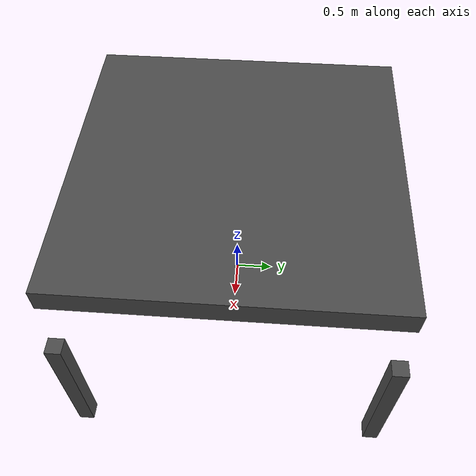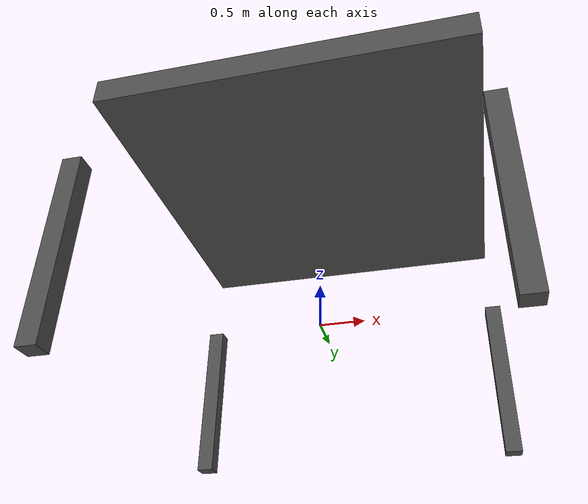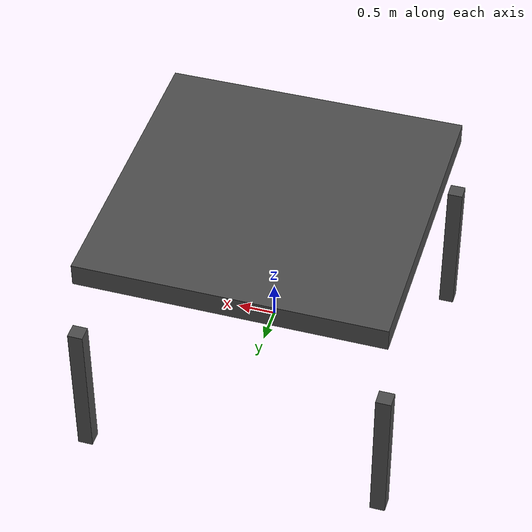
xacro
<?xml version="1.0"?>
<robot name="table" xmlns:xacro="http://www.ros.org/wiki/xacro">

    <xacro:include filename="$(find robot_arm)/urdf/jl.xacro"/>
    <xacro:include filename="$(find robot_arm)/urdf/materials.xacro"/>

    <!-- Blat -->
    <xacro:x_link_box name="table_top"
    origin_xyz="0 0 2"  origin_rpy="0 0 0"
    mass = "4800" size="4 4 0.3"
    ixx="10000" iyy="10000" izz="10000" iyz="0" ixy="0" ixz="0"
    material="Gazebo/DarkGrey"
    />

    <!-- LP Joint -->
    <xacro:x_joint name="lp_leg_joint" type="revolute"
    axis="0 0 1"    limit_low="0"   limit_up="0" limit_eff="0"  limit_vel="0"
    origin_xyz="0 0 0"    origin_rpy="0 0 0"
    parent="table_top"  child="lp_leg"/>

    <!-- LP Noga -->
    <xacro:x_link_box name="lp_leg"
    origin_xyz="2 2 0"  origin_rpy="0 0 0"
    mass = "4800" size="0.2 0.2 2"
    ixx="10000" iyy="10000" izz="10000" iyz="0" ixy="0" ixz="0"
    material="Gazebo/DarkGrey"
    />

    <!-- RP Joint -->
    <xacro:x_joint name="rp_leg_joint" type="revolute"
    axis="0 0 1"    limit_low="0"   limit_up="0" limit_eff="0"  limit_vel="0"
    origin_xyz="0 0 0"    origin_rpy="0 0 0"
    parent="table_top"  child="rp_leg"/>

    <!-- RP Noga -->
    <xacro:x_link_box name="rp_leg"
    origin_xyz="-2 2 0"  origin_rpy="0 0 0"
    mass = "4800" size="0.2 0.2 2"
    ixx="10000" iyy="10000" izz="10000" iyz="0" ixy="0" ixz="0"
    material="Gazebo/DarkGrey"
    />

    <!-- LT Joint -->
    <xacro:x_joint name="lt_leg_joint" type="revolute"
    axis="0 0 1"    limit_low="0"   limit_up="0" limit_eff="0"  limit_vel="0"
    origin_xyz="0 0 0"    origin_rpy="0 0 0"
    parent="table_top"  child="lt_leg"/>

    <!-- LT Noga -->
    <xacro:x_link_box name="lt_leg"
    origin_xyz="2 -2 0"  origin_rpy="0 0 0"
    mass = "4800" size="0.2 0.2 2"
    ixx="10000" iyy="10000" izz="10000" iyz="0" ixy="0" ixz="0"
    material="Gazebo/DarkGrey"
    />

    <!-- RT Joint -->
    <xacro:x_joint name="rt_leg_joint" type="revolute"
    axis="0 0 1"    limit_low="0"   limit_up="0" limit_eff="0"  limit_vel="0"
    origin_xyz="0 0 0"    origin_rpy="0 0 0"
    parent="table_top"  child="rt_leg"/>

    <!-- RT Noga -->
    <xacro:x_link_box name="rt_leg"
    origin_xyz="-2 -2 0"  origin_rpy="0 0 0"
    mass = "4800" size="0.2 0.2 2"
    ixx="10000" iyy="10000" izz="10000" iyz="0" ixy="0" ixz="0"
    material="Gazebo/DarkGrey"
    />

<!-- Obiekty -->

    <!-- Kula -->

    <!-- Kostka -->

    <!-- Plugin -->
    <gazebo>
        <plugin name="gazebo_ros_control" filename="libgazebo_ros_control.so">
            <robotNamespace>/table</robotNamespace>
        </plugin>
    </gazebo>

</robot>

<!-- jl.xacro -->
<robot xmlns:xacro="http://www.ros.org/wiki/xacro">

    <!-- Staw -->
    <xacro:macro name="x_joint" params="name type axis origin_rpy origin_xyz parent child limit_low limit_up limit_eff limit_vel">
        <joint name="${name}" type="${type}">
            <axis xyz="${axis}"/>
            <limit lower="${limit_low}" upper="${limit_up}" effort="${limit_eff}" velocity="${limit_vel}"/>
            <origin xyz="${origin_xyz}" rpy="${origin_rpy}"/>
            <parent link="${parent}"/>
            <child link="${child}"/>
        </joint>
    </xacro:macro>

    <!-- Cylinder -->
    <xacro:macro name="x_link_cylinder" params="name origin_xyz origin_rpy radius coll_rad length mass ixx ixy ixz iyy iyz izz material">
        <link name="${name}">
            <inertial>
                <mass value="${mass}"/>
                <origin xyz="${origin_xyz}" rpy="${origin_rpy}"/>
                <inertia ixx="${ixx}" ixy="${ixy}" ixz="${ixz}" iyy="${iyy}" iyz="${iyz}" izz="${izz}"/>
            </inertial>
            <collision>
                <origin xyz="${origin_xyz}" rpy="${origin_rpy}"/>
                <geometry>
                    <cylinder radius="${coll_rad}" length="${length}"/>
                </geometry>
            </collision>
            <visual>
                <origin xyz="${origin_xyz}" rpy="${origin_rpy}"/>
                <geometry>
                    <cylinder radius="${radius}" length="${length}"/>
                </geometry>
                <material name="${material}"/>
            </visual>
        </link>
    </xacro:macro>

    <!-- Prostopadłościan -->
    <xacro:macro name="x_link_box" params="name origin_xyz origin_rpy size mass ixx ixy ixz iyy iyz izz material">
        <link name="${name}">
            <inertial>
                <mass value="${mass}"/>
                <origin xyz="${origin_xyz}" rpy="${origin_rpy}"/>
                <inertia ixx="${ixx}" ixy="${ixy}" ixz="${ixz}" iyy="${iyy}" iyz="${iyz}" izz="${izz}"/>
            </inertial>
            <collision>
               <origin xyz="${origin_xyz}" rpy="${origin_rpy}"/>
                <geometry>
                    <box size="${size}"/>
                </geometry>
            </collision>
            <visual>
                <origin xyz="${origin_xyz}" rpy="${origin_rpy}"/>
                <geometry>
                    <box size="${size}"/>
                </geometry>
                <material name="${material}"/>
            </visual>
        </link>
    </xacro:macro>

    <!-- Sfera -->
    <xacro:macro name="x_link_ball" params="name origin_xyz origin_rpy radius coll_rad mass ixx ixy ixz iyy iyz izz material">
        <link name="${name}">
            <inertial>
                <mass value="${mass}"/>
                    <origin xyz="${origin_xyz}" rpy="${origin_rpy}"/>
                <inertia ixx="${ixx}" ixy="${ixy}" ixz="${ixz}" iyy="${iyy}" iyz="${iyz}" izz="${izz}"/>
            </inertial>
            <collision>
                <origin xyz="${origin_xyz}" rpy="${origin_rpy}"/>
                <geometry>
                    <sphere radius="${coll_rad}"/>
                </geometry>
            </collision>
            <visual>
                <origin xyz="${origin_xyz}" rpy="${origin_rpy}"/>
                <geometry>
                    <sphere radius="${radius}"/>
                </geometry>
                <material name="${material}"/>
            </visual>
        </link>
    </xacro:macro>

</robot>

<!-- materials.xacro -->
<robot xmlns:xacro="http://www.ros.org/wiki/xacro">

    <!-- Kolory z URDF -->
    <material name="Rust">
        <color rgba="${82/255} ${13/255} ${0/255} 1.0"/>
    </material>

    <!-- Kolory z SDF -->
    <gazebo reference="base_link">
        <visual>
          <material>
            <ambient>0.322 0.051 0.0 1.0</ambient>
            <diffuse>0.322 0.051 0.0 1.0</diffuse>
            <specular>0.322 0.051 0.0 1.0</specular>
            <emissive>0.322 0.051 0.0 1.0</emissive>
          </material>
        </visual>
    </gazebo>

    <gazebo reference="link_01">
        <visual>
          <material>
            <ambient>0.322 0.051 0.0 1.0</ambient>
            <diffuse>0.322 0.051 0.0 1.0</diffuse>
            <specular>0.322 0.051 0.0 1.0</specular>
            <emissive>0.322 0.051 0.0 1.0</emissive>
          </material>
        </visual>
    </gazebo>

    <gazebo reference="link_02">
        <visual>
          <material>
            <ambient>0.322 0.051 0.0 1.0</ambient>
            <diffuse>0.322 0.051 0.0 1.0</diffuse>
            <specular>0.322 0.051 0.0 1.0</specular>
            <emissive>0.322 0.051 0.0 1.0</emissive>
          </material>
        </visual>
    </gazebo>

    <gazebo reference="link_03">
        <visual>
          <material>
            <ambient>0.322 0.051 0.0 1.0</ambient>
            <diffuse>0.322 0.051 0.0 1.0</diffuse>
            <specular>0.322 0.051 0.0 1.0</specular>
            <emissive>0.322 0.051 0.0 1.0</emissive>
          </material>
        </visual>
    </gazebo>

    <gazebo reference="link_04">
        <visual>
          <material>
            <ambient>0.322 0.051 0.0 1.0</ambient>
            <diffuse>0.322 0.051 0.0 1.0</diffuse>
            <specular>0.322 0.051 0.0 1.0</specular>
            <emissive>0.322 0.051 0.0 1.0</emissive>
          </material>
        </visual>
    </gazebo>

    <gazebo reference="link_05">
        <visual>
          <material>
            <ambient>0.322 0.051 0.0 1.0</ambient>
            <diffuse>0.322 0.051 0.0 1.0</diffuse>
            <specular>0.322 0.051 0.0 1.0</specular>
            <emissive>0.322 0.051 0.0 1.0</emissive>
          </material>
        </visual>
    </gazebo>

    <gazebo reference="link_06">
        <visual>
          <material>
            <ambient>0.322 0.051 0.0 1.0</ambient>
            <diffuse>0.322 0.051 0.0 1.0</diffuse>
            <specular>0.322 0.051 0.0 1.0</specular>
            <emissive>0.322 0.051 0.0 1.0</emissive>
          </material>
        </visual>
    </gazebo>

    <gazebo reference="link_07">
        <visual>
          <material>
            <ambient>0.322 0.051 0.0 1.0</ambient>
            <diffuse>0.322 0.051 0.0 1.0</diffuse>
            <specular>0.322 0.051 0.0 1.0</specular>
            <emissive>0.322 0.051 0.0 1.0</emissive>
          </material>
        </visual>
    </gazebo>

    <gazebo reference="link_08">
        <visual>
          <material>
            <ambient>0.322 0.051 0.0 1.0</ambient>
            <diffuse>0.322 0.051 0.0 1.0</diffuse>
            <specular>0.322 0.051 0.0 1.0</specular>
            <emissive>0.322 0.051 0.0 1.0</emissive>
          </material>
        </visual>
    </gazebo>

    <gazebo reference="link_09">
        <visual>
          <material>
            <ambient>0.322 0.051 0.0 1.0</ambient>
            <diffuse>0.322 0.051 0.0 1.0</diffuse>
            <specular>0.322 0.051 0.0 1.0</specular>
            <emissive>0.322 0.051 0.0 1.0</emissive>
          </material>
        </visual>
    </gazebo>

    <gazebo reference="link_10">
        <visual>
          <material>
            <ambient>0.322 0.051 0.0 1.0</ambient>
            <diffuse>0.322 0.051 0.0 1.0</diffuse>
            <specular>0.322 0.051 0.0 1.0</specular>
            <emissive>0.322 0.051 0.0 1.0</emissive>
          </material>
        </visual>
    </gazebo>

    <gazebo reference="link_11">
        <visual>
          <material>
            <ambient>0.322 0.051 0.0 1.0</ambient>
            <diffuse>0.322 0.051 0.0 1.0</diffuse>
            <specular>0.322 0.051 0.0 1.0</specular>
            <emissive>0.322 0.051 0.0 1.0</emissive>
          </material>
        </visual>
    </gazebo>

    <gazebo reference="link_12">
        <visual>
          <material>
            <ambient>0.322 0.051 0.0 1.0</ambient>
            <diffuse>0.322 0.051 0.0 1.0</diffuse>
            <specular>0.322 0.051 0.0 1.0</specular>
            <emissive>0.322 0.051 0.0 1.0</emissive>
          </material>
        </visual>
    </gazebo>

    <gazebo reference="link_13">
        <visual>
          <material>
            <ambient>0.322 0.051 0.0 1.0</ambient>
            <diffuse>0.322 0.051 0.0 1.0</diffuse>
            <specular>0.322 0.051 0.0 1.0</specular>
            <emissive>0.322 0.051 0.0 1.0</emissive>
          </material>
        </visual>
    </gazebo>

    <gazebo reference="link_14">
        <visual>
          <material>
            <ambient>0.322 0.051 0.0 1.0</ambient>
            <diffuse>0.322 0.051 0.0 1.0</diffuse>
            <specular>0.322 0.051 0.0 1.0</specular>
            <emissive>0.322 0.051 0.0 1.0</emissive>
          </material>
        </visual>
    </gazebo>

    <gazebo reference="link_15">
        <visual>
          <material>
            <ambient>0.322 0.051 0.0 1.0</ambient>
            <diffuse>0.322 0.051 0.0 1.0</diffuse>
            <specular>0.322 0.051 0.0 1.0</specular>
            <emissive>0.322 0.051 0.0 1.0</emissive>
          </material>
        </visual>
    </gazebo>

    <gazebo reference="link_16">
        <visual>
          <material>
            <ambient>0.322 0.051 0.0 1.0</ambient>
            <diffuse>0.322 0.051 0.0 1.0</diffuse>
            <specular>0.322 0.051 0.0 1.0</specular>
            <emissive>0.322 0.051 0.0 1.0</emissive>
          </material>
        </visual>
    </gazebo>

</robot>
